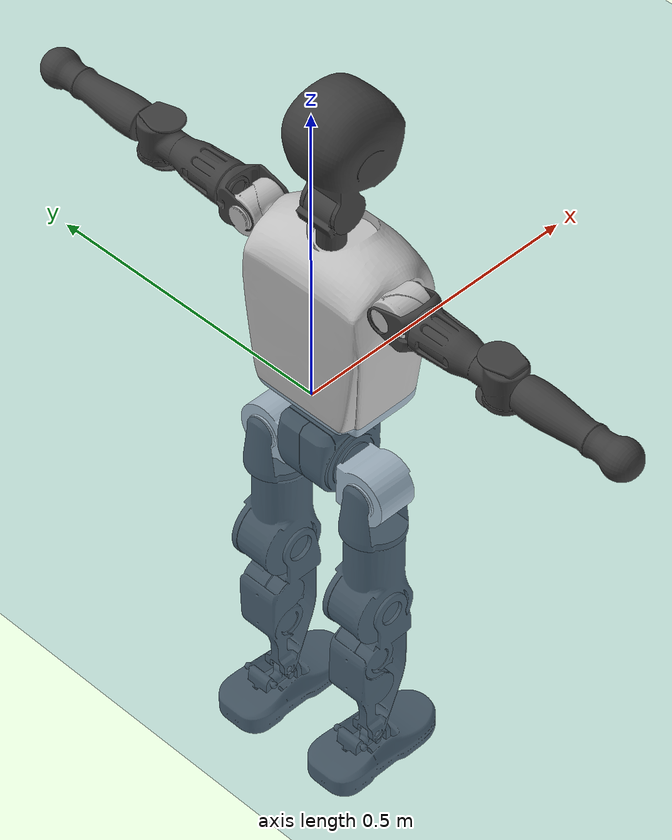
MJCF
<mujoco model="T1">
  <compiler angle="radian" assetdir="assets" balanceinertia="true" inertiafromgeom="false"/>

  <option timestep="0.005" density="1.2" viscosity="2e-05"/>

  <size nkey="1"/>

  <visual>
    <quality shadowsize="8192"/>
    <map shadowclip="0.5"/>
  </visual>

  <default>
    <default class="/">
      <joint armature="0.01" damping="0.01" frictionloss="0.1"/>
      <geom contype="0" conaffinity="0" group="1" solref="-1000 -80"/>
      <site size="0.01 0.005 0.005" group="5"/>
      <general forcelimited="true" biastype="affine" gainprm="25" biasprm="0 -25 -0.6"/>
      <default class="t1">
        <geom rgba="0.25 0.25 0.25 1"/>
        <default class="visual">
          <geom type="mesh" group="2"/>
        </default>
        <default class="collision">
          <geom group="3"/>
        </default>
        <default class="foot">
          <geom size="0.1115 0.05 0.015" type="box" condim="6" group="4" priority="1" solimp="0.015 1 0.015"/>
        </default>
        <default class="reward_collision_sphere">
          <geom group="5" rgba="1 0 0 1"/>
        </default>
      </default>
    </default>
  </default>

  <asset>
    <texture type="skybox" colorspace="auto" name="//unnamed_texture_0" builtin="gradient" rgb1="0.95 0.95 0.95" rgb2="0.95 0.95 0.95" width="100" height="600"/>
    <texture type="2d" colorspace="auto" name="texplane" builtin="checker" rgb1="0.345 0.575 0.748" rgb2="0.345 0.575 0.748" markrgb="1 1 1" width="512" height="512"/>
    <material name="MatPlane" class="/" texture="texplane" texuniform="true" texrepeat="2 2" specular="0.9"/>
    <mesh name="Trunk" class="/" file="Trunk.stl"/>
    <mesh name="H1" class="/" file="H1.stl"/>
    <mesh name="H2" class="/" file="H2.stl"/>
    <mesh name="AL1" class="/" file="AL1.stl"/>
    <mesh name="AL2" class="/" file="AL2.stl"/>
    <mesh name="AL3" class="/" file="AL3.stl"/>
    <mesh name="left_hand_link" class="/" file="left_hand_link.stl"/>
    <mesh name="AR1" class="/" file="AR1.stl"/>
    <mesh name="AR2" class="/" file="AR2.stl"/>
    <mesh name="AR3" class="/" file="AR3.stl"/>
    <mesh name="right_hand_link" class="/" file="right_hand_link.stl"/>
    <mesh name="Waist" class="/" file="Waist.stl"/>
    <mesh name="Hip_Pitch_Left" class="/" file="Hip_Pitch_Left.stl"/>
    <mesh name="Hip_Roll_Left" class="/" file="Hip_Roll_Left.stl"/>
    <mesh name="Hip_Yaw_Left" class="/" file="Hip_Yaw_Left.stl"/>
    <mesh name="Shank_Left" class="/" file="Shank_Left.stl"/>
    <mesh name="Ankle_Cross_Left" class="/" file="Ankle_Cross_Left.stl"/>
    <mesh name="left_foot_link" class="/" file="left_foot_link.stl"/>
    <mesh name="Hip_Pitch_Right" class="/" file="Hip_Pitch_Right.stl"/>
    <mesh name="Hip_Roll_Right" class="/" file="Hip_Roll_Right.stl"/>
    <mesh name="Hip_Yaw_Right" class="/" file="Hip_Yaw_Right.stl"/>
    <mesh name="Shank_Right" class="/" file="Shank_Right.stl"/>
    <mesh name="Ankle_Cross_Right" class="/" file="Ankle_Cross_Right.stl"/>
    <mesh name="right_foot_link" class="/" file="right_foot_link.stl"/>
  </asset>

  <worldbody>
    <geom name="floor" class="/" size="100 100 0.125" type="plane" group="0" material="MatPlane"/>
    <light name="toplight_shadow" class="/" pos="0 0 5" dir="0.0990148 0.0990148 -0.990148" type="directional" ambient="0.04 0.04 0.04" diffuse="0.55 0.55 0.55" specular="0.12 0.12 0.12"/>
    <light name="toplight_fill" class="/" pos="0 0 5" dir="0.0990148 0.0990148 -0.990148" type="directional" castshadow="false" ambient="0.04 0.04 0.04" diffuse="0.3 0.3 0.3" specular="0.08 0.08 0.08"/>
    <body name="trunk" childclass="t1" pos="0.00160058 -0.000367108 0.000927141" quat="1 0.000507789 0.000814772 -7.28777e-05">
      <inertial pos="0.0298546 -0.000373947 0.108026" quat="0.999894 -0.0115427 -0.00595787 -0.00657308" mass="6.63937" diaginertia="0.00450089 0.0467845 0.0694475"/>
      <joint name="//unnamed_joint_0" type="free" armature="0" damping="0" frictionloss="0"/>
      <geom name="//unnamed_geom_1" class="visual" rgba="0.76 0.76 0.76 1" mesh="Trunk"/>
      <geom name="//unnamed_geom_2" class="collision" size="0.0625671 0.0834228 0.125134" pos="0.0327976 0 0.125995" type="box"/>
      <geom name="//unnamed_geom_3" class="reward_collision_sphere" size="0.0959362" pos="0.0327976 0 0.104996"/>
      <geom name="//unnamed_geom_4" class="reward_collision_sphere" size="0.0125134" pos="0.0327976 0.0770184 0"/>
      <geom name="//unnamed_geom_5" class="reward_collision_sphere" size="0.0125134" pos="0.0327976 -0.0770184 0"/>
      <geom name="//unnamed_geom_6" class="reward_collision_sphere" size="0.0125134" pos="0.0327976 0.0969525 0.188992"/>
      <geom name="//unnamed_geom_7" class="reward_collision_sphere" size="0.0125134" pos="0.0327976 -0.0969525 0.188992"/>
      <site name="imu" pos="0.00669888 -0.0132926 0.00533695" size="0.00834228"/>
      <camera name="track" pos="0 -1.8122 0" quat="0.707107 0.707107 0 0" mode="trackcom"/>
      <camera name="ego_camera" pos="0.0666885 0 0.440982" quat="-0.5 -0.5 0.5 0.5"/>
      <body name="H1" pos="0.0366413 0.0015287 0.257546" quat="0.999999 0.00114159 0.000509172 -0.000313844">
        <inertial pos="-0.00245626 0.000331196 0.0577167" quat="0.764581 -0.00666612 -0.00171074 0.644491" mass="0.262085" diaginertia="1.18351e-05 0.000141514 0.00019578"/>
        <joint name="AAHead_yaw" pos="0 0 0" axis="-0.00189926 -0.00449553 0.999988" stiffness="0.000489011" range="-1.56647 1.62202" armature="0.00813494" damping="0.0187504" frictionloss="0.0927172"/>
        <geom name="//unnamed_geom_8" class="visual" mesh="H1"/>
        <body name="H2" pos="0.00189854 0.000579871 0.0646597" quat="1 -0.00015863 -8.64386e-05 0.000116149">
          <inertial pos="0.00481864 0.00316127 0.104167" quat="0.988738 0.101602 -0.068418 -0.0859802" mass="0.356063" diaginertia="9.28413e-05 0.00112365 0.00219088"/>
          <joint name="Head_pitch" pos="0 0 0" axis="0.000738375 -0.999999 0.00145274" range="-1.17108 0.35253" armature="0.00888573" damping="0.0128658" frictionloss="0.0848391"/>
          <geom name="//unnamed_geom_9" class="visual" mesh="H2"/>
          <geom name="//unnamed_geom_10" class="collision" size="0.0667382" pos="0.00546627 0 0.115495"/>
          <geom name="//unnamed_geom_11" class="reward_collision_sphere" size="0.0750805" pos="0.0109325 0 0.104996"/>
        </body>
      </body>
      <body name="AL1" pos="0.0351324 0.0953317 0.232205" quat="1 0.000123237 0.000514845 1.15283e-05">
        <inertial pos="0.00158763 0.0393945 -0.000665824" quat="0.493523 0.499552 -0.507614 0.49921" mass="0.326023" diaginertia="7.02793e-05 0.000833813 0.000388049"/>
        <joint name="Left_Shoulder_Pitch" pos="0 0 0" axis="-0.00285002 0.99997 0.00722451" stiffness="0.00265745" range="-3.25517 1.21936" armature="0.00900271" damping="0.0131699" frictionloss="0.0775695"/>
        <geom name="//unnamed_geom_12" class="visual" rgba="0.76 0.76 0.76 1" mesh="AL1"/>
        <body name="AL2" pos="0.00341687 0.0424918 0.00184108" quat="0.999999 1.23048e-05 0.00112479 -0.000941347">
          <inertial pos="0.00255946 0.0317533 0.002286" quat="0.487753 0.512123 -0.488403 0.511165" mass="0.0908576" diaginertia="1.94493e-05 0.000202312 0.000217095"/>
          <joint name="Left_Shoulder_Roll" pos="0 0 0" axis="-0.999934 -0.00345195 0.010983" range="-1.54134 1.74687" armature="0.00858887" damping="0" frictionloss="0.0794855"/>
          <geom name="//unnamed_geom_13" class="visual" mesh="AL2"/>
          <body name="AL3" pos="-0.00119466 0.0556068 0.00293459" quat="1 0.000493296 0.000220624 0.000834038">
            <inertial pos="0.000337774 0.0796959 0.000418336" quat="0.706122 0.708086 0.00102454 -0.00216032" mass="0.598449" diaginertia="0.000650199 0.00810953 0.000819369"/>
            <joint name="Left_Elbow_Pitch" pos="0 0 0" axis="0.00479522 -0.999981 0.00393119" range="-2.28356 2.27077" armature="0.00845506" damping="0" frictionloss="0.0870119"/>
            <geom name="//unnamed_geom_14" class="visual" mesh="AL3"/>
            <geom name="//unnamed_geom_15" class="collision" size="0.0250268 0.0625671" pos="0 0.0453049 0" quat="0.707105 0.707108 0 0" type="cylinder"/>
            <geom name="//unnamed_geom_16" class="reward_collision_sphere" size="0.0300322"/>
            <body name="left_hand_link" pos="0.00347861 0.134083 0.000894157" quat="1 6.69854e-06 -0.000113122 0.000396293">
              <inertial pos="-0.00278768 0.0992971 -0.00103452" quat="0.703476 0.710612 -0.0111376 -0.00535814" mass="0.184107" diaginertia="0.000395493 0.00489201 0.000273928"/>
              <joint name="Left_Elbow_Yaw" pos="0 0 0" axis="0.00612139 0.000142387 0.999981" stiffness="0.0111475" range="-2.39511 -0.0385389" armature="0.00872076" damping="0.0149268" frictionloss="0.0858171"/>
              <geom name="//unnamed_geom_17" class="visual" mesh="left_hand_link"/>
              <geom name="//unnamed_geom_18" class="collision" size="0.0250268 0.0729949" pos="0 0.117793 0" quat="0.707105 0.707108 0 0" type="cylinder"/>
              <geom name="//unnamed_geom_19" class="reward_collision_sphere" size="0.0417114"/>
              <geom name="//unnamed_geom_20" class="reward_collision_sphere" size="0.029198" pos="0 0.0996708 0"/>
              <geom name="//unnamed_geom_21" class="reward_collision_sphere" size="0.029198" pos="0 0.194811 0"/>
            </body>
          </body>
        </body>
      </body>
      <body name="AR1" pos="0.0273764 -0.0953638 0.230148" quat="0.999999 0.00092669 0.000966223 -0.000181524">
        <inertial pos="0.00174283 -0.0383506 0.000286081" quat="0.50424 0.495719 -0.504227 0.495741" mass="0.306361" diaginertia="6.45344e-05 0.000797523 0.000376436"/>
        <joint name="Right_Shoulder_Pitch" pos="0 0 0" axis="0.00380383 -0.999992 -0.00139502" stiffness="0.00283757" range="-1.23195 3.36246" armature="0.00886387" damping="0.0159516" frictionloss="0.0746994"/>
        <geom name="//unnamed_geom_22" class="visual" rgba="0.76 0.76 0.76 1" mesh="AR1"/>
        <body name="AR2" pos="-0.00371108 -0.0391912 0.0007231" quat="1 4.59822e-05 -0.000458517 -0.00016031">
          <inertial pos="-0.000165417 -0.0336938 0.00168419" quat="0.512361 0.486132 -0.511493 0.489425" mass="0.0935329" diaginertia="1.98899e-05 0.000219579 0.000237345"/>
          <joint name="Right_Shoulder_Roll" pos="0 0 0" axis="-0.999829 0.00817545 0.0165917" stiffness="0.00774448" range="-1.78226 1.5435" armature="0.00929639" damping="0.000152515" frictionloss="0.0852287"/>
          <geom name="//unnamed_geom_23" class="visual" mesh="AR2"/>
          <body name="AR3" pos="-0.00262667 -0.0533335 0.00213521" quat="1 -1.71496e-06 -1.19571e-05 5.82686e-06">
            <inertial pos="0.000963503 -0.0747514 0.000285338" quat="0.7046 0.709526 -0.00615606 0.00853341" mass="0.588535" diaginertia="0.000610001 0.00775914 0.000773772"/>
            <joint name="Right_Elbow_Pitch" pos="0 0 0" axis="-0.00851522 0.999934 0.00774065" stiffness="0.00109001" range="-2.27547 2.23394" armature="0.00858854" damping="0" frictionloss="0.0884038"/>
            <geom name="//unnamed_geom_24" class="visual" mesh="AR3"/>
            <geom name="//unnamed_geom_25" class="collision" size="0.0250268 0.0625671" pos="0 -0.0453049 0" quat="0.707105 0.707108 0 0" type="cylinder"/>
            <geom name="//unnamed_geom_26" class="reward_collision_sphere" size="0.0300322"/>
            <body name="right_hand_link" pos="0.00128441 -0.131169 0.00095543" quat="1 8.60028e-05 9.37358e-05 -8.91685e-05">
              <inertial pos="-0.00171824 -0.101047 0.000475736" quat="0.706971 0.707242 0.000395716 0.00095787" mass="0.188978" diaginertia="0.000402525 0.00491537 0.000260927"/>
              <joint name="Right_Elbow_Yaw" pos="0 0 0" axis="-0.00416166 -0.0063983 0.999971" stiffness="0.00262282" range="0.0414084 2.38252" armature="0.00805054" damping="0" frictionloss="0.0864987"/>
              <geom name="//unnamed_geom_27" class="visual" mesh="right_hand_link"/>
              <geom name="//unnamed_geom_28" class="collision" size="0.0250268 0.0729949" pos="0 -0.117793 0" quat="0.707105 0.707108 0 0" type="cylinder"/>
              <geom name="//unnamed_geom_29" class="reward_collision_sphere" size="0.0417114"/>
              <geom name="//unnamed_geom_30" class="reward_collision_sphere" size="0.029198" pos="0 -0.0996708 0"/>
              <geom name="//unnamed_geom_31" class="reward_collision_sphere" size="0.029198" pos="0 -0.194811 0"/>
            </body>
          </body>
        </body>
      </body>
      <body name="Waist" pos="0.0333247 0.000810804 -0.118308" quat="1 0.00056574 0.000770413 0.00023622">
        <inertial pos="-0.000663297 -0.000457784 0.00789177" quat="0.983733 0.0038842 -0.179442 -0.00741671" mass="1.46097" diaginertia="0.000251466 0.00329539 0.00580175"/>
        <joint name="Waist" pos="0 0 0" axis="-0.00470814 -0.000145944 0.999989" range="-1.60795 1.52805" armature="0.00803261" damping="0.0243792" frictionloss="0.0862827"/>
        <geom name="//unnamed_geom_32" class="visual" mesh="Waist"/>
        <body name="Hip_Pitch_Left" pos="2.53768e-05 0.0983773 -0.00267948" quat="1 7.46762e-05 -2.78942e-05 0.000145328">
          <inertial pos="-0.000134432 -0.00723436 -0.0166626" quat="0.977587 0.209971 0.0151658 -0.00249745" mass="0.591565" diaginertia="8.58807e-05 0.000896743 0.00157807"/>
          <joint name="Left_Hip_Pitch" pos="0 0 0" axis="0.017533 0.999845 -0.0018717" stiffness="0.0107979" range="-1.85261 1.5809" armature="0.00885143" damping="0.00889065" frictionloss="0.0828437"/>
          <geom name="//unnamed_geom_33" class="visual" rgba="0.76 0.76 0.76 1" mesh="Hip_Pitch_Left"/>
          <body name="Hip_Roll_Left" pos="-0.000667312 0.00132255 -0.0204902" quat="1 2.80782e-05 1.35408e-05 -0.000193084">
            <inertial pos="0.00264715 -0.000910951 -0.0568782" quat="0.708544 -0.00775208 -0.00498967 0.705607" mass="0.227233" diaginertia="8.94637e-05 0.000950557 0.000686118"/>
            <joint name="Left_Hip_Roll" pos="0 0 0" axis="-1 0.000640695 -0.000283559" stiffness="0.0116718" range="-1.59495 0.18794" armature="0.00738356" damping="0.00134597" frictionloss="0.0722041"/>
            <geom name="//unnamed_geom_34" class="visual" mesh="Hip_Roll_Left"/>
            <geom name="//unnamed_geom_35" class="reward_collision_sphere" size="0.0458825"/>
            <body name="Hip_Yaw_Left" pos="0.00280168 -0.00323364 -0.0841544" quat="1 0.000103321 0.000193648 -0.000214643">
              <inertial pos="-0.00226154 -0.00373498 -0.0965567" quat="0.702935 -0.0424318 -0.0298593 0.709359" mass="1.23942" diaginertia="0.00120867 0.0149817 0.00323802"/>
              <joint name="Left_Hip_Yaw" pos="0 0 0" axis="-0.00705396 -0.0117637 -0.999906" stiffness="0.0102743" range="-1.04113 1.00068" armature="0.00837824" damping="0.0155581" frictionloss="0.0846468"/>
              <geom name="//unnamed_geom_36" class="visual" mesh="Hip_Yaw_Left"/>
              <geom name="//unnamed_geom_37" class="collision" size="0.0417114 0.0667382" type="cylinder"/>
              <body name="Shank_Left" pos="-0.00440304 -0.000597811 -0.143944" quat="1 -0.000159225 3.12281e-05 -5.4343e-05">
                <inertial pos="-0.00139932 0.00256772 -0.127817" quat="0.998175 -0.00176463 -0.0193638 0.0571635" mass="0.970876" diaginertia="0.00168342 0.0202049 0.00239277"/>
                <joint name="Left_Knee_Pitch" pos="0 0 0" axis="-1.58269e-05 1 8.3961e-05" range="-0.0233343 2.35814" armature="0.00790115" damping="0.0214722" frictionloss="0.077538"/>
                <geom name="//unnamed_geom_38" class="visual" mesh="Shank_Left"/>
                <geom name="//unnamed_geom_39" class="collision" size="0.0417114 0.0625671" pos="0 0 -0.125995" type="cylinder"/>
                <geom name="//unnamed_geom_40" class="reward_collision_sphere" size="0.0542248"/>
                <body name="Ankle_Cross_Left" pos="3.56188e-05 -0.00277916 -0.291342" quat="1 0.000122451 7.97367e-05 0.000285035">
                  <inertial pos="-0.00256095 0.00196423 -0.00920804" quat="0.44139 0.552526 0.553202 0.440292" mass="0.0436739" diaginertia="1.50107e-06 1.6111e-05 1.52727e-05"/>
                  <joint name="Left_Ankle_Pitch" pos="0 0 0" axis="0.00136662 0.999994 0.00328414" range="-0.870334 0.320291" armature="0.007509" damping="0" frictionloss="0.0726753"/>
                  <geom name="//unnamed_geom_41" class="visual" mesh="Ankle_Cross_Left"/>
                  <body name="left_foot_link" pos="-0.00172208 0.000768881 -0.0154839" quat="1 1.67466e-05 0.000129365 5.68605e-05">
                    <inertial pos="0.00134614 0.00144105 -0.0093466" quat="-0.00357164 0.620439 -0.00611251 0.784223" mass="0.391715" diaginertia="0.000134068 0.00151674 0.0028206"/>
                    <joint name="Left_Ankle_Roll" pos="0 0 0" axis="-0.999997 -0.000941512 0.00242544" stiffness="0.00807965" range="-0.39746 0.392504" armature="0.00865804" damping="0.0224854" frictionloss="0.0771427"/>
                    <geom name="//unnamed_geom_42" class="visual" mesh="left_foot_link"/>
                    <geom name="left_foot" class="foot" size="0.0928018 0.0455144 0.0115213" pos="0.00546627 0 -0.0157494"/>
                    <geom name="//unnamed_geom_44" class="reward_collision_sphere" size="0.0433798" pos="0.00546627 0 -0.0157494"/>
                    <geom name="//unnamed_geom_45" class="reward_collision_sphere" size="0.0250268" pos="0.0519296 -0.0208403 -0.0157494"/>
                    <geom name="//unnamed_geom_46" class="reward_collision_sphere" size="0.0250268" pos="-0.0382639 -0.0208403 -0.0157494"/>
                    <site name="left_foot" class="foot" pos="0.00546627 0 -0.0157494" size="0.00834228"/>
                  </body>
                </body>
              </body>
            </body>
          </body>
        </body>
        <body name="Hip_Pitch_Right" pos="-0.00209049 -0.0958671 -0.00173732" quat="1 -0.000130983 -7.72668e-05 0.000413037">
          <inertial pos="-0.00103725 0.00666871 -0.0188849" quat="0.973283 -0.229337 0.00318545 -0.0106936" mass="0.599649" diaginertia="8.97521e-05 0.000881533 0.00164168"/>
          <joint name="Right_Hip_Pitch" pos="0 0 0" axis="0.00503932 -0.999921 -0.0115054" range="-1.51308 1.76778" armature="0.00839032" damping="0.00952974" frictionloss="0.0882128"/>
          <geom name="//unnamed_geom_47" class="visual" rgba="0.76 0.76 0.76 1" mesh="Hip_Pitch_Right"/>
          <body name="Hip_Roll_Right" pos="-0.00169301 0.000402767 -0.0183489" quat="1 -9.24538e-06 -0.000203666 -9.54836e-05">
            <inertial pos="-0.00143806 -0.00109736 -0.0559028" quat="0.71171 -0.0154097 -0.0126053 0.702192" mass="0.222883" diaginertia="8.4716e-05 0.00089 0.000646128"/>
            <joint name="Right_Hip_Roll" pos="0 0 0" axis="-0.999977 -0.00111123 -0.00668884" range="-0.206396 1.52099" armature="0.00751009" damping="0.0172674" frictionloss="0.0921415"/>
            <geom name="//unnamed_geom_48" class="visual" mesh="Hip_Roll_Right"/>
            <geom name="//unnamed_geom_49" class="reward_collision_sphere" size="0.0458825"/>
            <body name="Hip_Yaw_Right" pos="0.00314986 0.00283518 -0.0863376" quat="1 0.000304233 -3.11588e-05 0.000228547">
              <inertial pos="-0.00141347 -0.00117836 -0.0957447" quat="0.716797 -0.0421924 -0.0282172 0.695432" mass="1.25752" diaginertia="0.00124888 0.0150432 0.00314639"/>
              <joint name="Right_Hip_Yaw" pos="0 0 0" axis="-0.00114648 0.00118179 -0.999999" range="-1.05594 1.05755" armature="0.00757105" damping="0" frictionloss="0.0844742"/>
              <geom name="//unnamed_geom_50" class="visual" mesh="Hip_Yaw_Right"/>
              <geom name="//unnamed_geom_51" class="collision" size="0.0417114 0.0667382" type="cylinder"/>
              <body name="Shank_Right" pos="-0.00386802 0.0015888 -0.140062" quat="1 -0.000129079 -4.49184e-06 0.000120297">
                <inertial pos="-0.0012781 -0.00323593 -0.131381" quat="0.999182 -0.000397808 -0.0255582 -0.0313402" mass="1.06531" diaginertia="0.00175018 0.0215061 0.00248271"/>
                <joint name="Right_Knee_Pitch" pos="0 0 0" axis="-0.0157825 -0.999857 -0.00601392" stiffness="0.00254992" range="-2.38674 -0.00340121" armature="0.00853706" damping="0.0257046" frictionloss="0.0727316"/>
                <geom name="//unnamed_geom_52" class="visual" mesh="Shank_Right"/>
                <geom name="//unnamed_geom_53" class="collision" size="0.0417114 0.0625671" pos="0 0 -0.125995" type="cylinder"/>
                <geom name="//unnamed_geom_54" class="reward_collision_sphere" size="0.0542248"/>
                <body name="Ankle_Cross_Right" pos="0.00223312 0.00131435 -0.295338" quat="1 1.28098e-05 -0.000195241 -0.000178346">
                  <inertial pos="-0.00451213 -0.000176062 -0.00579049" quat="0.439677 0.555863 0.552141 0.439137" mass="0.0417635" diaginertia="1.40268e-06 1.61752e-05 1.46598e-05"/>
                  <joint name="Right_Ankle_Pitch" pos="0 0 0" axis="0.00317534 -0.999989 0.00343067" stiffness="0.0104708" range="-0.299548 0.869075" armature="0.00893427" damping="0.0150694" frictionloss="0.0864349"/>
                  <geom name="//unnamed_geom_55" class="visual" mesh="Ankle_Cross_Right"/>
                  <body name="right_foot_link" pos="0.00350835 0.000157684 -0.013205" quat="1 1.29316e-05 6.74024e-06 6.6303e-06">
                    <inertial pos="-0.00225189 0.00225883 -0.0100561" quat="-0.00964685 0.620972 -0.000991439 0.783772" mass="0.385983" diaginertia="0.000131197 0.00150357 0.00279976"/>
                    <joint name="Right_Ankle_Roll" pos="0 0 0" axis="-0.999992 0.00354153 -0.00158588" range="-0.422948 0.40469" armature="0.0076579" damping="0.000576042" frictionloss="0.0769476"/>
                    <geom name="//unnamed_geom_56" class="visual" mesh="right_foot_link"/>
                    <geom name="right_foot" class="foot" size="0.110389 0.0462747 0.013916" pos="0.00546627 0 -0.0157494"/>
                    <geom name="//unnamed_geom_58" class="reward_collision_sphere" size="0.0333691"/>
                    <geom name="//unnamed_geom_59" class="reward_collision_sphere" size="0.0250268" pos="0.00546627 0 -0.0157494"/>
                    <geom name="//unnamed_geom_60" class="reward_collision_sphere" size="0.0250268" pos="0.0519296 0.0208403 -0.0157494"/>
                    <geom name="//unnamed_geom_61" class="reward_collision_sphere" size="0.0250268" pos="-0.0382639 0.0208403 -0.0157494"/>
                    <site name="right_foot" class="foot" pos="0.00546627 0 -0.0157494" size="0.00834228"/>
                  </body>
                </body>
              </body>
            </body>
          </body>
        </body>
      </body>
    </body>
  </worldbody>

  <contact>
    <pair class="/" geom1="floor" geom2="left_foot" name="//unnamed_contact_0"/>
    <pair class="/" geom1="floor" geom2="right_foot" name="//unnamed_contact_1"/>
  </contact>

  <actuator>
    <general name="AAHead_yaw" class="/" joint="AAHead_yaw" forcerange="-6.13514 6.13514" gainprm="22.8198" biasprm="0 -22.8198 -0.490233"/>
    <general name="Head_pitch" class="/" joint="Head_pitch" forcerange="-6.29159 6.29159" gainprm="22.8198" biasprm="0 -22.8198 -0.490233"/>
    <general name="Left_Shoulder_Pitch" class="/" joint="Left_Shoulder_Pitch" forcerange="-15.1502 15.1502" gainprm="22.8198" biasprm="0 -22.8198 -0.490233"/>
    <general name="Left_Shoulder_Roll" class="/" joint="Left_Shoulder_Roll" forcerange="-15.109 15.109" gainprm="22.8198" biasprm="0 -22.8198 -0.490233"/>
    <general name="Left_Elbow_Pitch" class="/" joint="Left_Elbow_Pitch" forcerange="-15.6005 15.6005" gainprm="22.8198" biasprm="0 -22.8198 -0.490233"/>
    <general name="Left_Elbow_Yaw" class="/" joint="Left_Elbow_Yaw" forcerange="-16.2935 16.2935" gainprm="22.8198" biasprm="0 -22.8198 -0.490233"/>
    <general name="Right_Shoulder_Pitch" class="/" joint="Right_Shoulder_Pitch" forcerange="-13.587 13.587" gainprm="22.8198" biasprm="0 -22.8198 -0.490233"/>
    <general name="Right_Shoulder_Roll" class="/" joint="Right_Shoulder_Roll" forcerange="-13.6883 13.6883" gainprm="22.8198" biasprm="0 -22.8198 -0.490233"/>
    <general name="Right_Elbow_Pitch" class="/" joint="Right_Elbow_Pitch" forcerange="-15.2532 15.2532" gainprm="22.8198" biasprm="0 -22.8198 -0.490233"/>
    <general name="Right_Elbow_Yaw" class="/" joint="Right_Elbow_Yaw" forcerange="-16.3218 16.3218" gainprm="22.8198" biasprm="0 -22.8198 -0.490233"/>
    <general name="Waist" class="/" joint="Waist" forcerange="-23.4646 23.4646" gainprm="22.8198" biasprm="0 -22.8198 -0.490233"/>
    <general name="Left_Hip_Pitch" class="/" joint="Left_Hip_Pitch" forcerange="-37.2951 37.2951" gainprm="22.8198" biasprm="0 -22.8198 -0.490233"/>
    <general name="Left_Hip_Roll" class="/" joint="Left_Hip_Roll" forcerange="-26.8484 26.8484" gainprm="22.8198" biasprm="0 -22.8198 -0.490233"/>
    <general name="Left_Hip_Yaw" class="/" joint="Left_Hip_Yaw" forcerange="-24.1722 24.1722" gainprm="22.8198" biasprm="0 -22.8198 -0.490233"/>
    <general name="Left_Knee_Pitch" class="/" joint="Left_Knee_Pitch" forcerange="-54.5427 54.5427" gainprm="22.8198" biasprm="0 -22.8198 -0.490233"/>
    <general name="Left_Ankle_Pitch" class="/" joint="Left_Ankle_Pitch" forcerange="-15.2187 15.2187" gainprm="22.8198" biasprm="0 -22.8198 -0.490233"/>
    <general name="Left_Ankle_Roll" class="/" joint="Left_Ankle_Roll" forcerange="-12.7492 12.7492" gainprm="22.8198" biasprm="0 -22.8198 -0.490233"/>
    <general name="Right_Hip_Pitch" class="/" joint="Right_Hip_Pitch" forcerange="-37.3438 37.3438" gainprm="22.8198" biasprm="0 -22.8198 -0.490233"/>
    <general name="Right_Hip_Roll" class="/" joint="Right_Hip_Roll" forcerange="-23.4015 23.4015" gainprm="22.8198" biasprm="0 -22.8198 -0.490233"/>
    <general name="Right_Hip_Yaw" class="/" joint="Right_Hip_Yaw" forcerange="-22.5188 22.5188" gainprm="22.8198" biasprm="0 -22.8198 -0.490233"/>
    <general name="Right_Knee_Pitch" class="/" joint="Right_Knee_Pitch" forcerange="-48.7222 48.7222" gainprm="22.8198" biasprm="0 -22.8198 -0.490233"/>
    <general name="Right_Ankle_Pitch" class="/" joint="Right_Ankle_Pitch" forcerange="-16.9146 16.9146" gainprm="22.8198" biasprm="0 -22.8198 -0.490233"/>
    <general name="Right_Ankle_Roll" class="/" joint="Right_Ankle_Roll" forcerange="-13.8017 13.8017" gainprm="22.8198" biasprm="0 -22.8198 -0.490233"/>
  </actuator>

  <sensor>
    <gyro site="imu" name="imu_angular_velocity"/>
    <velocimeter site="imu" name="imu_linear_velocity"/>
    <framelinvel objtype="site" objname="left_foot" name="left_foot_global_linear_velocity"/>
    <framelinvel objtype="site" objname="right_foot" name="right_foot_global_linear_velocity"/>
  </sensor>

  <keyframe>
    <key name="home" qpos="0 0 0.6385 1 0 0 0 0 0 0 1.4 0 -0.4 0 -1.4 0 0.4 0 -0.4 0 0 0.8 -0.4 0 0.4 0 0 -0.8 0.4 0"/>
  </keyframe>
</mujoco>
